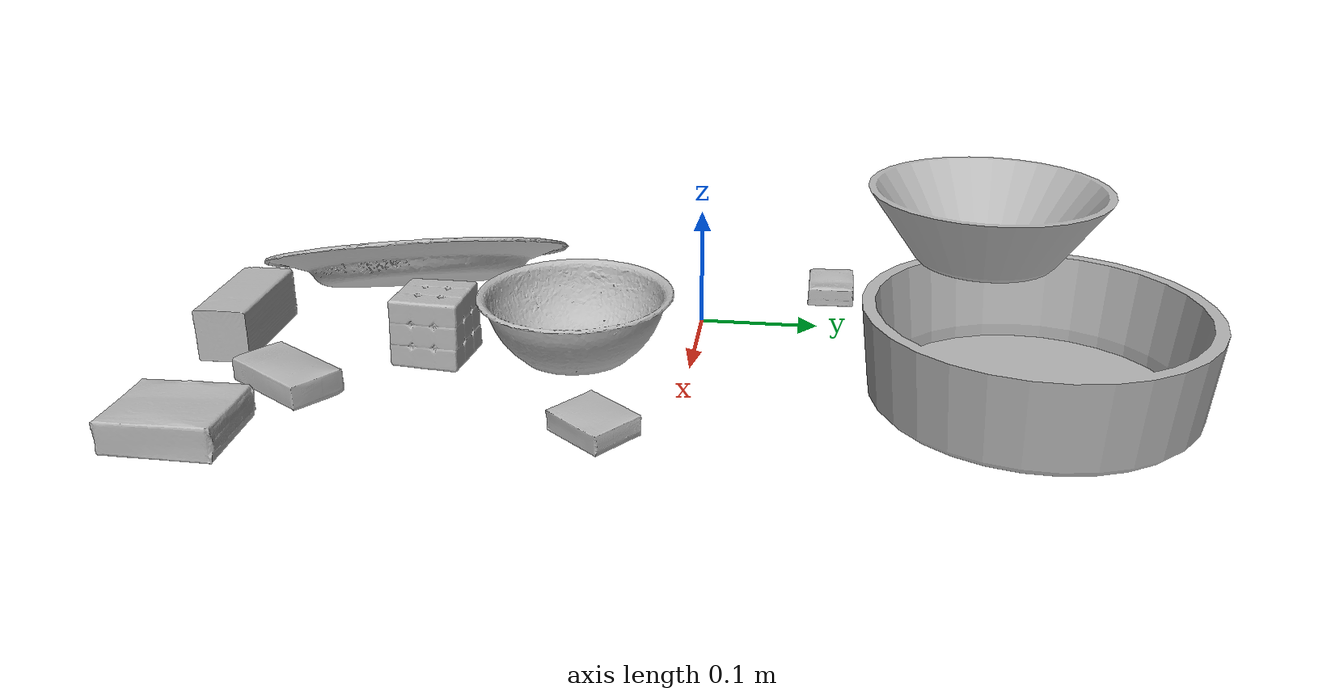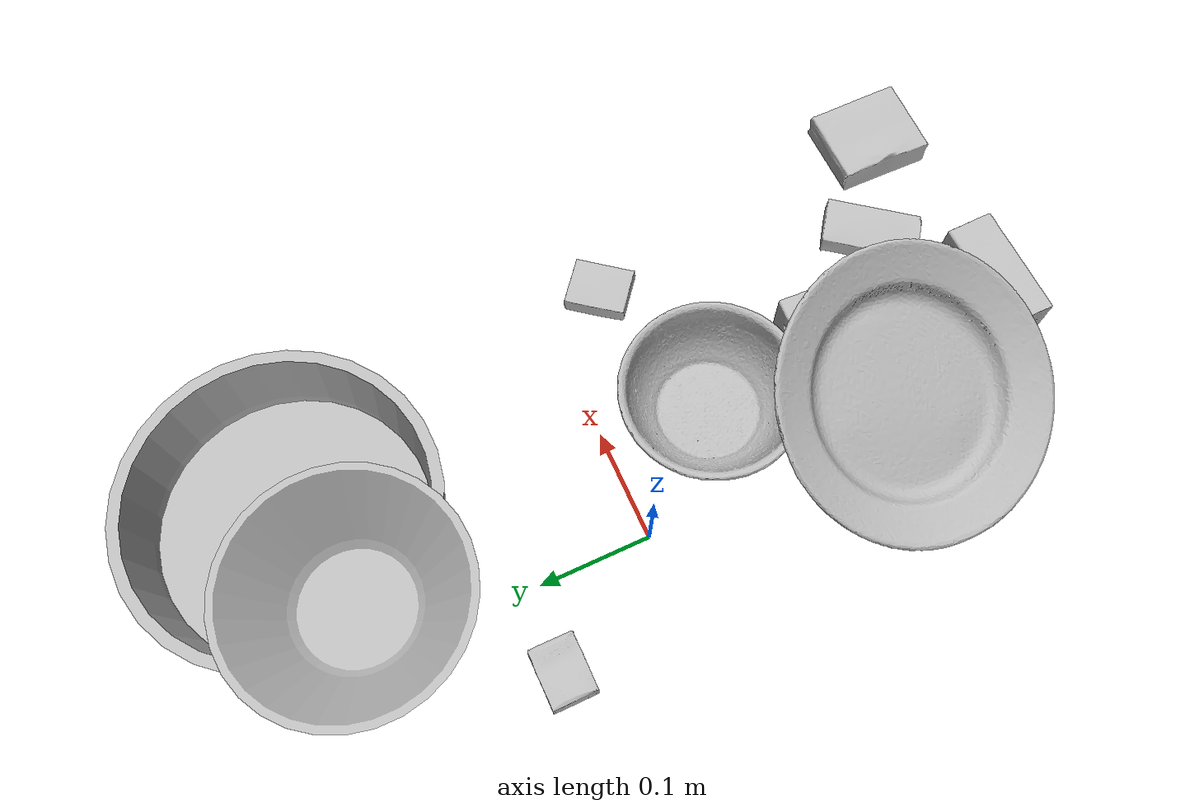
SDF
<sdf version="1.4">
  <world name="default">
    <light name="light1" type="point">
      <pose>0 0 1 0 0 0</pose>
      <diffuse>3 3 3 1</diffuse>
      <specular>3 3 3 1</specular>
    </light>
    <light name="light2" type="point">
      <pose>0 0.5 2 0 0 0</pose>
      <diffuse>1 1 1 1</diffuse>
      <specular>1 1 1 1</specular>
    </light>
    <light name="light3" type="point">
      <pose>0 0.5 2 0 0 0</pose>
      <diffuse>3 3 3 1</diffuse>
      <specular>3 3 3 1</specular>
    </light>
    <scene>
      <ambient>0.7 0.7 0.7</ambient>
    </scene>
    <model name="box1">
      <link name="link_box1">
        <collision name="default">
          <geometry>
            <mesh>
              <uri>model://cracker_box/collision_meshes/collision.obj</uri>
              <scale>0.25 0.25 0.25</scale>
            </mesh>
          </geometry>
          <surface>
            <friction>
              <ode>
                <mu>0.5</mu>
                <mu2>0.5</mu2>
              </ode>
            </friction>
          <contact>
        <ode>
            <max_vel>0</max_vel>
            <min_depth>0.0001</min_depth>
            <kp>1e8</kp>
        </ode>
    </contact></surface>
        </collision>
        <visual name="default">
          <geometry>
            <mesh>
              <uri>model://cracker_box/visual_meshes/visual.dae</uri>
              <scale>0.25 0.25 0.25</scale>
            </mesh>
          </geometry>
        </visual>
        <inertial>
          <mass>0.050503700971603394</mass>
          <pose>0.0002366037224419415 6.358561950037256e-05 -0.0004257383698131889 -0.00031620760376762643 -0.011106489600284392 0.0025467959332018085</pose>
          <inertia>
            <ixx>8.02868e-06</ixx>
            <iyy>1.3256925e-05</iyy>
            <izz>1.8918852e-05</izz>
            <ixy>0</ixy>
            <ixz>0</ixz>
            <iyz>0</iyz>
          </inertia>
        </inertial>
      </link>
      <pose>-0.07310456782579422 0.11140719801187515 0.009096027351915836 -0.014051201139423108 -0.005016298519245634 -3.141524395985228</pose>
    </model>
    <model name="box11">
      <link name="link_box11">
        <collision name="default">
          <geometry>
            <mesh>
              <uri>model://rubiks_cube/collision_meshes/collision.obj</uri>
              <scale>1.0 1.0 1.0</scale>
            </mesh>
          </geometry>
          <surface>
            <friction>
              <ode>
                <mu>0.5</mu>
                <mu2>0.5</mu2>
              </ode>
            </friction>
          <contact>
        <ode>
            <max_vel>0</max_vel>
            <min_depth>0.0001</min_depth>
            <kp>1e8</kp>
        </ode>
    </contact></surface>
        </collision>
        <visual name="default">
          <geometry>
            <mesh>
              <uri>model://rubiks_cube/visual_meshes/visual.dae</uri>
              <scale>1.0 1.0 1.0</scale>
            </mesh>
          </geometry>
        </visual>
        <inertial>
          <mass>0.15071694552898407</mass>
          <pose>2.6721043468569405e-05 5.2569666877388954e-05 -7.264316082000732e-06 -0.05467297119259296 -0.09814009057422186 -0.034453654418704155</pose>
          <inertia>
            <ixx>8.328124e-05</ixx>
            <iyy>8.2892846e-05</iyy>
            <izz>8.397135e-05</izz>
            <ixy>0</ixy>
            <ixz>0</ixz>
            <iyz>0</iyz>
          </inertia>
        </inertial>
      </link>
      <pose>0.09974914789199829 -0.20909756422042847 0.028678949922323227 -2.2465776661017284e-05 7.837403597986447e-06 3.0727942312137557</pose>
    </model>
    <model name="box2">
      <link name="link_box2">
        <collision name="default">
          <geometry>
            <mesh>
              <uri>model://gelatin_box/collision_meshes/collision.obj</uri>
              <scale>1.0 1.0 1.0</scale>
            </mesh>
          </geometry>
          <surface>
            <friction>
              <ode>
                <mu>0.5</mu>
                <mu2>0.5</mu2>
              </ode>
            </friction>
          <contact>
        <ode>
            <max_vel>0</max_vel>
            <min_depth>0.0001</min_depth>
            <kp>1e8</kp>
        </ode>
    </contact></surface>
        </collision>
        <visual name="default">
          <geometry>
            <mesh>
              <uri>model://gelatin_box/visual_meshes/visual.dae</uri>
              <scale>1.0 1.0 1.0</scale>
            </mesh>
          </geometry>
        </visual>
        <inertial>
          <mass>0.24173277616500854</mass>
          <pose>0.00043196187471039593 0.00011156872642459348 -0.0003640321083366871 -0.001050371835386973 -0.004755817297158009 0.016440553881960234</pose>
          <inertia>
            <ixx>0.00017064363</ixx>
            <iyy>0.00012188985</iyy>
            <izz>0.00025975762</izz>
            <ixy>0</ixy>
            <ixz>0</ixz>
            <iyz>0</iyz>
          </inertia>
        </inertial>
      </link>
      <pose>0.26261597871780396 -0.3535453975200653 0.015168309211730957 0.005597417911001976 -0.007304527179813947 3.1249858646002435</pose>
    </model>
    <model name="box21">
      <link name="link_box21">
        <collision name="default">
          <geometry>
            <mesh>
              <uri>model://wood_block/collision_meshes/collision.obj</uri>
              <scale>0.5 0.5 0.5</scale>
            </mesh>
          </geometry>
          <surface>
            <friction>
              <ode>
                <mu>0.5</mu>
                <mu2>0.5</mu2>
              </ode>
            </friction>
          <contact>
        <ode>
            <max_vel>0</max_vel>
            <min_depth>0.0001</min_depth>
            <kp>1e8</kp>
        </ode>
    </contact></surface>
        </collision>
        <visual name="default">
          <geometry>
            <mesh>
              <uri>model://wood_block/visual_meshes/visual.dae</uri>
              <scale>0.5 0.5 0.5</scale>
            </mesh>
          </geometry>
        </visual>
        <inertial>
          <mass>0.16252566874027252</mass>
          <pose>-2.906657982748584e-06 -0.000285404734313488 0.00013204291462898254 -0.05220975528683206 -0.005192696037335319 -0.006861378846526553</pose>
          <inertia>
            <ixx>5.437098e-05</ixx>
            <iyy>0.00017175796</iyy>
            <izz>0.00017111548</izz>
            <ixy>0</ixy>
            <ixz>0</ixz>
            <iyz>0</iyz>
          </inertia>
        </inertial>
      </link>
      <pose>0.08112197369337082 -0.3789505958557129 0.0226292684674263 -0.005208514018977207 0.005718749470421234 -3.1269480652947936</pose>
    </model>
    <model name="box3">
      <link name="link_box3">
        <collision name="default">
          <geometry>
            <mesh>
              <uri>model://pudding_box/collision_meshes/collision.obj</uri>
              <scale>0.5 0.5 0.5</scale>
            </mesh>
          </geometry>
          <surface>
            <friction>
              <ode>
                <mu>0.5</mu>
                <mu2>0.5</mu2>
              </ode>
            </friction>
          <contact>
        <ode>
            <max_vel>0</max_vel>
            <min_depth>0.0001</min_depth>
            <kp>1e8</kp>
        </ode>
    </contact></surface>
        </collision>
        <visual name="default">
          <geometry>
            <mesh>
              <uri>model://pudding_box/visual_meshes/visual.dae</uri>
              <scale>0.5 0.5 0.5</scale>
            </mesh>
          </geometry>
        </visual>
        <inertial>
          <mass>0.05576644837856293</mass>
          <pose>0.00024474109522998333 0.0004033942532259971 -0.0002594413817860186 0.005213101792545572 -0.006603798718575614 0.020079825159656634</pose>
          <inertia>
            <ixx>1.5760277e-05</ixx>
            <iyy>1.0603625e-05</iyy>
            <izz>2.3274164e-05</izz>
            <ixy>0</ixy>
            <ixz>0</ixz>
            <iyz>0</iyz>
          </inertia>
        </inertial>
      </link>
      <pose>0.22405998408794403 -0.05602608993649483 0.00986290629953146 0.02234841966426481 -0.011391696997585953 2.463054659038464</pose>
    </model>
    <model name="box31">
      <link name="link_box31">
        <collision name="default">
          <geometry>
            <mesh>
              <uri>model://sugar_box/collision_meshes/collision.obj</uri>
              <scale>0.5 0.5 0.5</scale>
            </mesh>
          </geometry>
          <surface>
            <friction>
              <ode>
                <mu>0.5</mu>
                <mu2>0.5</mu2>
              </ode>
            </friction>
          <contact>
        <ode>
            <max_vel>0</max_vel>
            <min_depth>0.0001</min_depth>
            <kp>1e8</kp>
        </ode>
    </contact></surface>
        </collision>
        <visual name="default">
          <geometry>
            <mesh>
              <uri>model://sugar_box/visual_meshes/visual.dae</uri>
              <scale>0.5 0.5 0.5</scale>
            </mesh>
          </geometry>
        </visual>
        <inertial>
          <mass>0.1100529357790947</mass>
          <pose>0.0005171863595023751 1.924554817378521e-05 -0.00018182402709499002 -0.00040462641680988955 0.001050663522315131 0.0026153787888612426</pose>
          <inertia>
            <ixx>2.2923945e-05</ixx>
            <iyy>7.409492e-05</iyy>
            <izz>8.870046e-05</izz>
            <ixy>0</ixy>
            <ixz>0</ixz>
            <iyz>0</iyz>
          </inertia>
        </inertial>
      </link>
      <pose>0.17254555225372314 -0.30738386511802673 0.011399303562939167 0.0007758473253709093 -0.023432798977339398 0.9298022219869333</pose>
    </model>
    <model name="plate1">
      <link name="link_plate1">
        <collision name="default">
          <geometry>
            <mesh>
              <uri>model://pan_tefal/collision_meshes/collision.obj</uri>
              <scale>1.0 1.0 1.0</scale>
            </mesh>
          </geometry>
          <surface>
            <friction>
              <ode>
                <mu>0.5</mu>
                <mu2>0.5</mu2>
              </ode>
            </friction>
          <contact>
        <ode>
            <max_vel>0</max_vel>
            <min_depth>0.0001</min_depth>
            <kp>1e8</kp>
        </ode>
    </contact></surface>
        </collision>
        <visual name="default">
          <geometry>
            <mesh>
              <uri>model://pan_tefal/visual_meshes/visual.dae</uri>
              <scale>1.0 1.0 1.0</scale>
            </mesh>
          </geometry>
        </visual>
        <inertial>
          <mass>1.207520604133606</mass>
          <pose>-0.00018002177239395678 3.2792409911053255e-05 -0.00851493701338768 0.0008190288495961148 -0.0003301407263612178 -0.3318541272495768</pose>
          <inertia>
            <ixx>0.008335457</ixx>
            <iyy>0.008389196</iyy>
            <izz>0.015343971</izz>
            <ixy>0</ixy>
            <ixz>0</ixz>
            <iyz>0</iyz>
          </inertia>
        </inertial>
      </link>
      <pose>0.1288040578365326 0.26652348041534424 0.038050003349781036 5.540137472161256e-08 -6.958876859180591e-08 -2.4837708854484473</pose>
    </model>
    <model name="bowl1">
      <link name="link_bowl1">
        <collision name="default">
          <geometry>
            <mesh>
              <uri>model://bowl/collision_meshes/collision.obj</uri>
              <scale>1.0 1.0 1.0</scale>
            </mesh>
          </geometry>
          <surface>
            <friction>
              <ode>
                <mu>0.5</mu>
                <mu2>0.5</mu2>
              </ode>
            </friction>
          <contact>
        <ode>
            <max_vel>0</max_vel>
            <min_depth>0.0001</min_depth>
            <kp>1e8</kp>
        </ode>
    </contact></surface>
        </collision>
        <visual name="default">
          <geometry>
            <mesh>
              <uri>model://bowl/visual_meshes/visual.dae</uri>
              <scale>1.0 1.0 1.0</scale>
            </mesh>
          </geometry>
        </visual>
        <inertial>
          <mass>0.09256309270858765</mass>
          <pose>0.00020445158588699996 -0.001030202372930944 -0.0008042642730288208 -0.015764073075752352 0.01454679669645375 0.7140412125775129</pose>
          <inertia>
            <ixx>0.00021262471</ixx>
            <iyy>0.00020787389</iyy>
            <izz>0.00035770793</izz>
            <ixy>0</ixy>
            <ixz>0</ixz>
            <iyz>0</iyz>
          </inertia>
        </inertial>
      </link>
      <pose>0.08148519694805145 -0.09562750905752182 0.02778000198304653 2.144673520407188e-08 4.084846607457879e-08 -1.3873961525742344</pose>
    </model>
    <model name="plate2">
      <link name="link_plate2">
        <collision name="default">
          <geometry>
            <mesh>
              <uri>model://plate/collision_meshes/collision.obj</uri>
              <scale>1.0 1.0 1.0</scale>
            </mesh>
          </geometry>
          <surface>
            <friction>
              <ode>
                <mu>0.5</mu>
                <mu2>0.5</mu2>
              </ode>
            </friction>
          <contact>
        <ode>
            <max_vel>0</max_vel>
            <min_depth>0.0001</min_depth>
            <kp>1e8</kp>
        </ode>
    </contact></surface>
        </collision>
        <visual name="default">
          <geometry>
            <mesh>
              <uri>model://plate/visual_meshes/visual.dae</uri>
              <scale>1.0 1.0 1.0</scale>
            </mesh>
          </geometry>
        </visual>
        <inertial>
          <mass>0.22150008380413055</mass>
          <pose>-0.0006044640904292464 0.0002782581141218543 -0.0010561984963715076 0.0022187839711676756 -0.00322547471274247 0.4526095389577293</pose>
          <inertia>
            <ixx>0.0010361817</ixx>
            <iyy>0.0010262709</iyy>
            <izz>0.0020266173</izz>
            <ixy>0</ixy>
            <ixz>0</ixz>
            <iyz>0</iyz>
          </inertia>
        </inertial>
      </link>
      <pose>0.009855140000581741 -0.24823634326457977 0.04468370974063873 0.2850594829988094 0.29711946208729545 -2.0621230225269542</pose>
    </model>
    <model name="bowl2">
      <link name="link_bowl2">
        <collision name="default">
          <geometry>
            <mesh>
              <uri>model://bowl_a/collision_meshes/collision.obj</uri>
              <scale>1.0 1.0 1.0</scale>
            </mesh>
          </geometry>
          <surface>
            <friction>
              <ode>
                <mu>0.5</mu>
                <mu2>0.5</mu2>
              </ode>
            </friction>
          <contact>
        <ode>
            <max_vel>0</max_vel>
            <min_depth>0.0001</min_depth>
            <kp>1e8</kp>
        </ode>
    </contact></surface>
        </collision>
        <visual name="default">
          <geometry>
            <mesh>
              <uri>model://bowl_a/visual_meshes/visual.dae</uri>
              <scale>1.0 1.0 1.0</scale>
            </mesh>
          </geometry>
        </visual>
        <inertial>
          <mass>0.4869906008243561</mass>
          <pose>0.0002786735713016242 4.731232547783293e-05 -0.001376529224216938 -0.0009805388639875933 -0.0010938169956893674 -0.19123322132810686</pose>
          <inertia>
            <ixx>0.0013864844</ixx>
            <iyy>0.0013949967</iyy>
            <izz>0.0024659163</izz>
            <ixy>0</ixy>
            <ixz>0</ixz>
            <iyz>0</iyz>
          </inertia>
        </inertial>
      </link>
      <pose>0.024224190041422844 0.23567505180835724 0.10625611990690231 0.000823552696251516 -0.0004772327686444864 2.396129252339449</pose>
    </model>
  <physics type="ode">
      <max_contacts>50</max_contacts>
      <ode>
        <solver>
          <type>quick</type>
          <iters>75</iters>
        </solver>
        <constraints>
          <contact_max_correcting_vel>0</contact_max_correcting_vel>
          <contact_surface_layer>0</contact_surface_layer>
        </constraints>
      </ode>
    </physics></world>
</sdf>
